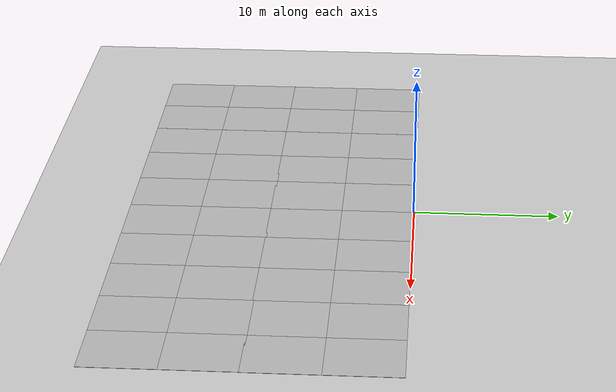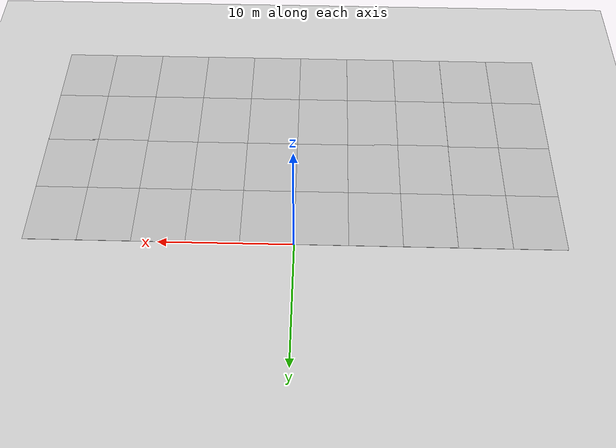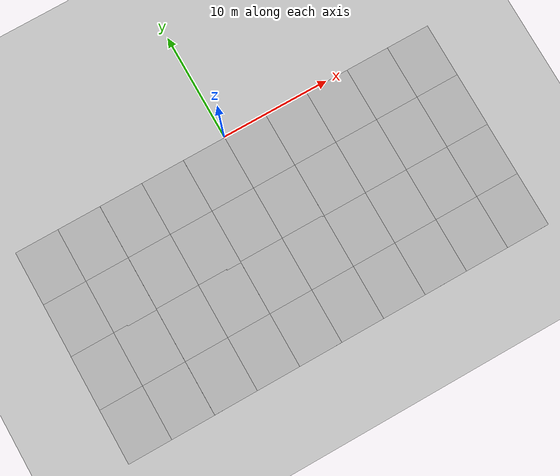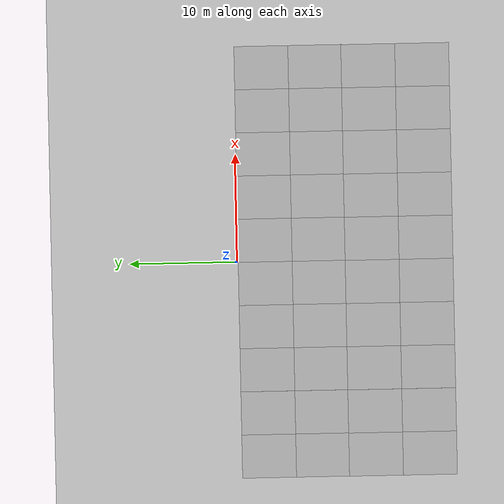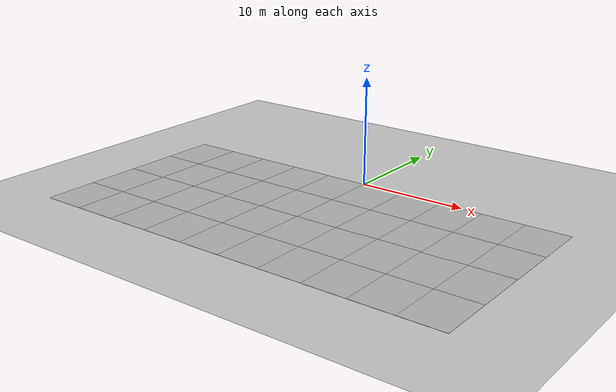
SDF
<sdf version="1.6">
 <world name="default">
  <model name="ground_plane">
   <static>1</static>
   <link name="link">
    <collision name="collision">
     <geometry><plane><normal>0 0 1</normal><size>100 100</size></plane></geometry>
     <surface>
      <contact><collide_bitmask>65535</collide_bitmask></contact>
      <friction><ode><mu>100</mu><mu2>50</mu2></ode></friction>
     </surface>
    </collision>
    <visual name="visual">
     <cast_shadows>0</cast_shadows>
     <geometry><plane><normal>0 0 1</normal><size>100 100</size></plane></geometry>
     <material>
      <script><uri>file://media/materials/scripts/gazebo.material</uri><name>Gazebo/Grey</name></script>
     </material>
    </visual>
   </link>
  </model>
  <model name="Ground_Soil">
   <model name="mud_box">
    <static>1</static>
    <link name="link">
     <collision name="collision"><geometry><box><size>8 10 0.02</size></box></geometry></collision>
     <visual name="visual_1">
      <pose>-2 2.5 0 0 -0 0</pose>
      <cast_shadows>0</cast_shadows>
      <geometry><box><size>4 5 0.02</size></box></geometry>
      <material>
       <script>
        <uri>model://mud_box/materials/scripts</uri>
        <uri>model://mud_box/materials/textures</uri>
        <name>vrc/mud</name>
       </script>
      </material>
     </visual>
     <visual name="visual_2">
      <pose>2 2.5 0 0 -0 0</pose>
      <cast_shadows>0</cast_shadows>
      <geometry><box><size>4 5 0.02</size></box></geometry>
      <material>
       <script>
        <uri>model://mud_box/materials/scripts</uri>
        <uri>model://mud_box/materials/textures</uri>
        <name>vrc/mud</name>
       </script>
      </material>
     </visual>
     <visual name="visual_3">
      <pose>2 -2.5 0 0 -0 0</pose>
      <cast_shadows>0</cast_shadows>
      <geometry><box><size>4 5 0.02</size></box></geometry>
      <material>
       <script>
        <uri>model://mud_box/materials/scripts</uri>
        <uri>model://mud_box/materials/textures</uri>
        <name>vrc/mud</name>
       </script>
      </material>
     </visual>
     <visual name="visual_4">
      <pose>-2 -2.5 0 0 -0 0</pose>
      <cast_shadows>0</cast_shadows>
      <geometry><box><size>4 5 0.02</size></box></geometry>
      <material>
       <script>
        <uri>model://mud_box/materials/scripts</uri>
        <uri>model://mud_box/materials/textures</uri>
        <name>vrc/mud</name>
       </script>
      </material>
     </visual>
    </link>
    <pose>-16.0013 0.000118 0 0 -0 0</pose>
   </model>
   <model name="mud_box_0">
    <static>1</static>
    <link name="link">
     <collision name="collision"><geometry><box><size>8 10 0.02</size></box></geometry></collision>
     <visual name="visual_1">
      <pose>-2 2.5 0 0 -0 0</pose>
      <cast_shadows>0</cast_shadows>
      <geometry><box><size>4 5 0.02</size></box></geometry>
      <material>
       <script>
        <uri>model://mud_box/materials/scripts</uri>
        <uri>model://mud_box/materials/textures</uri>
        <name>vrc/mud</name>
       </script>
      </material>
     </visual>
     <visual name="visual_2">
      <pose>2 2.5 0 0 -0 0</pose>
      <cast_shadows>0</cast_shadows>
      <geometry><box><size>4 5 0.02</size></box></geometry>
      <material>
       <script>
        <uri>model://mud_box/materials/scripts</uri>
        <uri>model://mud_box/materials/textures</uri>
        <name>vrc/mud</name>
       </script>
      </material>
     </visual>
     <visual name="visual_3">
      <pose>2 -2.5 0 0 -0 0</pose>
      <cast_shadows>0</cast_shadows>
      <geometry><box><size>4 5 0.02</size></box></geometry>
      <material>
       <script>
        <uri>model://mud_box/materials/scripts</uri>
        <uri>model://mud_box/materials/textures</uri>
        <name>vrc/mud</name>
       </script>
      </material>
     </visual>
     <visual name="visual_4">
      <pose>-2 -2.5 0 0 -0 0</pose>
      <cast_shadows>0</cast_shadows>
      <geometry><box><size>4 5 0.02</size></box></geometry>
      <material>
       <script>
        <uri>model://mud_box/materials/scripts</uri>
        <uri>model://mud_box/materials/textures</uri>
        <name>vrc/mud</name>
       </script>
      </material>
     </visual>
    </link>
    <pose>-7.99939 9.1e-05 0 0 -0 0</pose>
   </model>
   <model name="mud_box_1">
    <static>1</static>
    <link name="link">
     <collision name="collision"><geometry><box><size>8 10 0.02</size></box></geometry></collision>
     <visual name="visual_1">
      <pose>-2 2.5 0 0 -0 0</pose>
      <cast_shadows>0</cast_shadows>
      <geometry><box><size>4 5 0.02</size></box></geometry>
      <material>
       <script>
        <uri>model://mud_box/materials/scripts</uri>
        <uri>model://mud_box/materials/textures</uri>
        <name>vrc/mud</name>
       </script>
      </material>
     </visual>
     <visual name="visual_2">
      <pose>2 2.5 0 0 -0 0</pose>
      <cast_shadows>0</cast_shadows>
      <geometry><box><size>4 5 0.02</size></box></geometry>
      <material>
       <script>
        <uri>model://mud_box/materials/scripts</uri>
        <uri>model://mud_box/materials/textures</uri>
        <name>vrc/mud</name>
       </script>
      </material>
     </visual>
     <visual name="visual_3">
      <pose>2 -2.5 0 0 -0 0</pose>
      <cast_shadows>0</cast_shadows>
      <geometry><box><size>4 5 0.02</size></box></geometry>
      <material>
       <script>
        <uri>model://mud_box/materials/scripts</uri>
        <uri>model://mud_box/materials/textures</uri>
        <name>vrc/mud</name>
       </script>
      </material>
     </visual>
     <visual name="visual_4">
      <pose>-2 -2.5 0 0 -0 0</pose>
      <cast_shadows>0</cast_shadows>
      <geometry><box><size>4 5 0.02</size></box></geometry>
      <material>
       <script>
        <uri>model://mud_box/materials/scripts</uri>
        <uri>model://mud_box/materials/textures</uri>
        <name>vrc/mud</name>
       </script>
      </material>
     </visual>
    </link>
    <pose>0.000809 -0.000342 0 0 -0 0</pose>
   </model>
   <model name="mud_box_2">
    <static>1</static>
    <link name="link">
     <collision name="collision"><geometry><box><size>8 10 0.02</size></box></geometry></collision>
     <visual name="visual_1">
      <pose>-2 2.5 0 0 -0 0</pose>
      <cast_shadows>0</cast_shadows>
      <geometry><box><size>4 5 0.02</size></box></geometry>
      <material>
       <script>
        <uri>model://mud_box/materials/scripts</uri>
        <uri>model://mud_box/materials/textures</uri>
        <name>vrc/mud</name>
       </script>
      </material>
     </visual>
     <visual name="visual_2">
      <pose>2 2.5 0 0 -0 0</pose>
      <cast_shadows>0</cast_shadows>
      <geometry><box><size>4 5 0.02</size></box></geometry>
      <material>
       <script>
        <uri>model://mud_box/materials/scripts</uri>
        <uri>model://mud_box/materials/textures</uri>
        <name>vrc/mud</name>
       </script>
      </material>
     </visual>
     <visual name="visual_3">
      <pose>2 -2.5 0 0 -0 0</pose>
      <cast_shadows>0</cast_shadows>
      <geometry><box><size>4 5 0.02</size></box></geometry>
      <material>
       <script>
        <uri>model://mud_box/materials/scripts</uri>
        <uri>model://mud_box/materials/textures</uri>
        <name>vrc/mud</name>
       </script>
      </material>
     </visual>
     <visual name="visual_4">
      <pose>-2 -2.5 0 0 -0 0</pose>
      <cast_shadows>0</cast_shadows>
      <geometry><box><size>4 5 0.02</size></box></geometry>
      <material>
       <script>
        <uri>model://mud_box/materials/scripts</uri>
        <uri>model://mud_box/materials/textures</uri>
        <name>vrc/mud</name>
       </script>
      </material>
     </visual>
    </link>
    <pose>8.00089 -0.000148 0 0 -0 0</pose>
   </model>
   <model name="mud_box_3">
    <static>1</static>
    <link name="link">
     <collision name="collision"><geometry><box><size>8 10 0.02</size></box></geometry></collision>
     <visual name="visual_1">
      <pose>-2 2.5 0 0 -0 0</pose>
      <cast_shadows>0</cast_shadows>
      <geometry><box><size>4 5 0.02</size></box></geometry>
      <material>
       <script>
        <uri>model://mud_box/materials/scripts</uri>
        <uri>model://mud_box/materials/textures</uri>
        <name>vrc/mud</name>
       </script>
      </material>
     </visual>
     <visual name="visual_2">
      <pose>2 2.5 0 0 -0 0</pose>
      <cast_shadows>0</cast_shadows>
      <geometry><box><size>4 5 0.02</size></box></geometry>
      <material>
       <script>
        <uri>model://mud_box/materials/scripts</uri>
        <uri>model://mud_box/materials/textures</uri>
        <name>vrc/mud</name>
       </script>
      </material>
     </visual>
     <visual name="visual_3">
      <pose>2 -2.5 0 0 -0 0</pose>
      <cast_shadows>0</cast_shadows>
      <geometry><box><size>4 5 0.02</size></box></geometry>
      <material>
       <script>
        <uri>model://mud_box/materials/scripts</uri>
        <uri>model://mud_box/materials/textures</uri>
        <name>vrc/mud</name>
       </script>
      </material>
     </visual>
     <visual name="visual_4">
      <pose>-2 -2.5 0 0 -0 0</pose>
      <cast_shadows>0</cast_shadows>
      <geometry><box><size>4 5 0.02</size></box></geometry>
      <material>
       <script>
        <uri>model://mud_box/materials/scripts</uri>
        <uri>model://mud_box/materials/textures</uri>
        <name>vrc/mud</name>
       </script>
      </material>
     </visual>
    </link>
    <pose>15.9991 0.000313 0 0 -0 0</pose>
   </model>
   <static>0</static>
   <pose>-0.029393 -14.9577 0 0 -0 0</pose>
  </model>
  <model name="Ground_Soil_0">
   <model name="mud_box">
    <static>1</static>
    <link name="link">
     <collision name="collision"><geometry><box><size>8 10 0.02</size></box></geometry></collision>
     <visual name="visual_1">
      <pose>-2 2.5 0 0 -0 0</pose>
      <cast_shadows>0</cast_shadows>
      <geometry><box><size>4 5 0.02</size></box></geometry>
      <material>
       <script>
        <uri>model://mud_box/materials/scripts</uri>
        <uri>model://mud_box/materials/textures</uri>
        <name>vrc/mud</name>
       </script>
      </material>
     </visual>
     <visual name="visual_2">
      <pose>2 2.5 0 0 -0 0</pose>
      <cast_shadows>0</cast_shadows>
      <geometry><box><size>4 5 0.02</size></box></geometry>
      <material>
       <script>
        <uri>model://mud_box/materials/scripts</uri>
        <uri>model://mud_box/materials/textures</uri>
        <name>vrc/mud</name>
       </script>
      </material>
     </visual>
     <visual name="visual_3">
      <pose>2 -2.5 0 0 -0 0</pose>
      <cast_shadows>0</cast_shadows>
      <geometry><box><size>4 5 0.02</size></box></geometry>
      <material>
       <script>
        <uri>model://mud_box/materials/scripts</uri>
        <uri>model://mud_box/materials/textures</uri>
        <name>vrc/mud</name>
       </script>
      </material>
     </visual>
     <visual name="visual_4">
      <pose>-2 -2.5 0 0 -0 0</pose>
      <cast_shadows>0</cast_shadows>
      <geometry><box><size>4 5 0.02</size></box></geometry>
      <material>
       <script>
        <uri>model://mud_box/materials/scripts</uri>
        <uri>model://mud_box/materials/textures</uri>
        <name>vrc/mud</name>
       </script>
      </material>
     </visual>
    </link>
    <pose>-16.0013 0.000118 0 0 -0 0</pose>
   </model>
   <model name="mud_box_0">
    <static>1</static>
    <link name="link">
     <collision name="collision"><geometry><box><size>8 10 0.02</size></box></geometry></collision>
     <visual name="visual_1">
      <pose>-2 2.5 0 0 -0 0</pose>
      <cast_shadows>0</cast_shadows>
      <geometry><box><size>4 5 0.02</size></box></geometry>
      <material>
       <script>
        <uri>model://mud_box/materials/scripts</uri>
        <uri>model://mud_box/materials/textures</uri>
        <name>vrc/mud</name>
       </script>
      </material>
     </visual>
     <visual name="visual_2">
      <pose>2 2.5 0 0 -0 0</pose>
      <cast_shadows>0</cast_shadows>
      <geometry><box><size>4 5 0.02</size></box></geometry>
      <material>
       <script>
        <uri>model://mud_box/materials/scripts</uri>
        <uri>model://mud_box/materials/textures</uri>
        <name>vrc/mud</name>
       </script>
      </material>
     </visual>
     <visual name="visual_3">
      <pose>2 -2.5 0 0 -0 0</pose>
      <cast_shadows>0</cast_shadows>
      <geometry><box><size>4 5 0.02</size></box></geometry>
      <material>
       <script>
        <uri>model://mud_box/materials/scripts</uri>
        <uri>model://mud_box/materials/textures</uri>
        <name>vrc/mud</name>
       </script>
      </material>
     </visual>
     <visual name="visual_4">
      <pose>-2 -2.5 0 0 -0 0</pose>
      <cast_shadows>0</cast_shadows>
      <geometry><box><size>4 5 0.02</size></box></geometry>
      <material>
       <script>
        <uri>model://mud_box/materials/scripts</uri>
        <uri>model://mud_box/materials/textures</uri>
        <name>vrc/mud</name>
       </script>
      </material>
     </visual>
    </link>
    <pose>-7.99939 9.1e-05 0 0 -0 0</pose>
   </model>
   <model name="mud_box_1">
    <static>1</static>
    <link name="link">
     <collision name="collision"><geometry><box><size>8 10 0.02</size></box></geometry></collision>
     <visual name="visual_1">
      <pose>-2 2.5 0 0 -0 0</pose>
      <cast_shadows>0</cast_shadows>
      <geometry><box><size>4 5 0.02</size></box></geometry>
      <material>
       <script>
        <uri>model://mud_box/materials/scripts</uri>
        <uri>model://mud_box/materials/textures</uri>
        <name>vrc/mud</name>
       </script>
      </material>
     </visual>
     <visual name="visual_2">
      <pose>2 2.5 0 0 -0 0</pose>
      <cast_shadows>0</cast_shadows>
      <geometry><box><size>4 5 0.02</size></box></geometry>
      <material>
       <script>
        <uri>model://mud_box/materials/scripts</uri>
        <uri>model://mud_box/materials/textures</uri>
        <name>vrc/mud</name>
       </script>
      </material>
     </visual>
     <visual name="visual_3">
      <pose>2 -2.5 0 0 -0 0</pose>
      <cast_shadows>0</cast_shadows>
      <geometry><box><size>4 5 0.02</size></box></geometry>
      <material>
       <script>
        <uri>model://mud_box/materials/scripts</uri>
        <uri>model://mud_box/materials/textures</uri>
        <name>vrc/mud</name>
       </script>
      </material>
     </visual>
     <visual name="visual_4">
      <pose>-2 -2.5 0 0 -0 0</pose>
      <cast_shadows>0</cast_shadows>
      <geometry><box><size>4 5 0.02</size></box></geometry>
      <material>
       <script>
        <uri>model://mud_box/materials/scripts</uri>
        <uri>model://mud_box/materials/textures</uri>
        <name>vrc/mud</name>
       </script>
      </material>
     </visual>
    </link>
    <pose>0.000809 -0.000342 0 0 -0 0</pose>
   </model>
   <model name="mud_box_2">
    <static>1</static>
    <link name="link">
     <collision name="collision"><geometry><box><size>8 10 0.02</size></box></geometry></collision>
     <visual name="visual_1">
      <pose>-2 2.5 0 0 -0 0</pose>
      <cast_shadows>0</cast_shadows>
      <geometry><box><size>4 5 0.02</size></box></geometry>
      <material>
       <script>
        <uri>model://mud_box/materials/scripts</uri>
        <uri>model://mud_box/materials/textures</uri>
        <name>vrc/mud</name>
       </script>
      </material>
     </visual>
     <visual name="visual_2">
      <pose>2 2.5 0 0 -0 0</pose>
      <cast_shadows>0</cast_shadows>
      <geometry><box><size>4 5 0.02</size></box></geometry>
      <material>
       <script>
        <uri>model://mud_box/materials/scripts</uri>
        <uri>model://mud_box/materials/textures</uri>
        <name>vrc/mud</name>
       </script>
      </material>
     </visual>
     <visual name="visual_3">
      <pose>2 -2.5 0 0 -0 0</pose>
      <cast_shadows>0</cast_shadows>
      <geometry><box><size>4 5 0.02</size></box></geometry>
      <material>
       <script>
        <uri>model://mud_box/materials/scripts</uri>
        <uri>model://mud_box/materials/textures</uri>
        <name>vrc/mud</name>
       </script>
      </material>
     </visual>
     <visual name="visual_4">
      <pose>-2 -2.5 0 0 -0 0</pose>
      <cast_shadows>0</cast_shadows>
      <geometry><box><size>4 5 0.02</size></box></geometry>
      <material>
       <script>
        <uri>model://mud_box/materials/scripts</uri>
        <uri>model://mud_box/materials/textures</uri>
        <name>vrc/mud</name>
       </script>
      </material>
     </visual>
    </link>
    <pose>8.00089 -0.000148 0 0 -0 0</pose>
   </model>
   <model name="mud_box_3">
    <static>1</static>
    <link name="link">
     <collision name="collision"><geometry><box><size>8 10 0.02</size></box></geometry></collision>
     <visual name="visual_1">
      <pose>-2 2.5 0 0 -0 0</pose>
      <cast_shadows>0</cast_shadows>
      <geometry><box><size>4 5 0.02</size></box></geometry>
      <material>
       <script>
        <uri>model://mud_box/materials/scripts</uri>
        <uri>model://mud_box/materials/textures</uri>
        <name>vrc/mud</name>
       </script>
      </material>
     </visual>
     <visual name="visual_2">
      <pose>2 2.5 0 0 -0 0</pose>
      <cast_shadows>0</cast_shadows>
      <geometry><box><size>4 5 0.02</size></box></geometry>
      <material>
       <script>
        <uri>model://mud_box/materials/scripts</uri>
        <uri>model://mud_box/materials/textures</uri>
        <name>vrc/mud</name>
       </script>
      </material>
     </visual>
     <visual name="visual_3">
      <pose>2 -2.5 0 0 -0 0</pose>
      <cast_shadows>0</cast_shadows>
      <geometry><box><size>4 5 0.02</size></box></geometry>
      <material>
       <script>
        <uri>model://mud_box/materials/scripts</uri>
        <uri>model://mud_box/materials/textures</uri>
        <name>vrc/mud</name>
       </script>
      </material>
     </visual>
     <visual name="visual_4">
      <pose>-2 -2.5 0 0 -0 0</pose>
      <cast_shadows>0</cast_shadows>
      <geometry><box><size>4 5 0.02</size></box></geometry>
      <material>
       <script>
        <uri>model://mud_box/materials/scripts</uri>
        <uri>model://mud_box/materials/textures</uri>
        <name>vrc/mud</name>
       </script>
      </material>
     </visual>
    </link>
    <pose>15.9991 0.000313 0 0 -0 0</pose>
   </model>
   <static>0</static>
   <pose>-0.0126 -5.05002 0 0 -0 0</pose>
  </model>
 </world>
</sdf>
